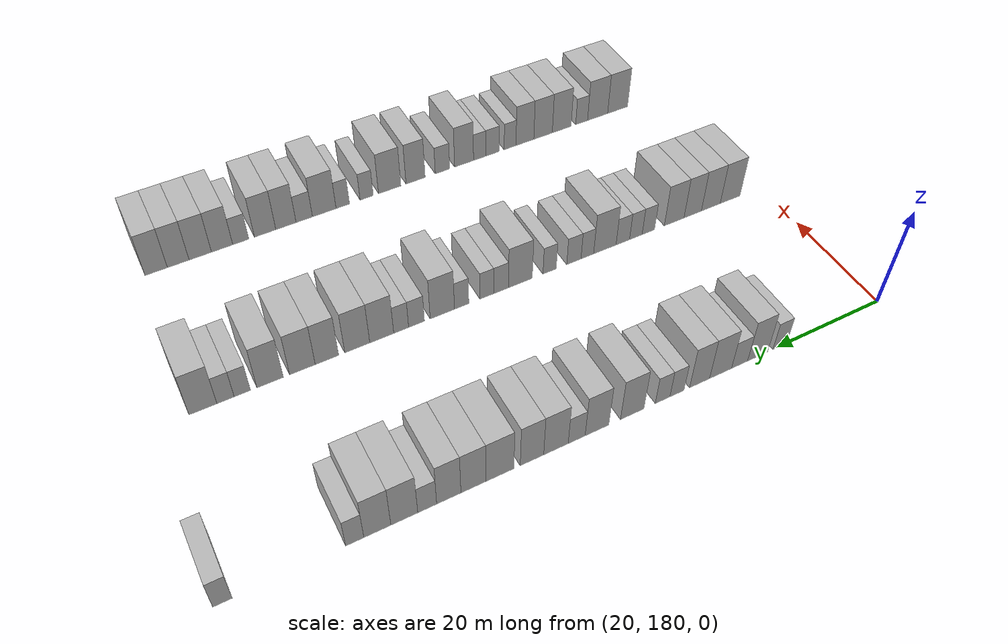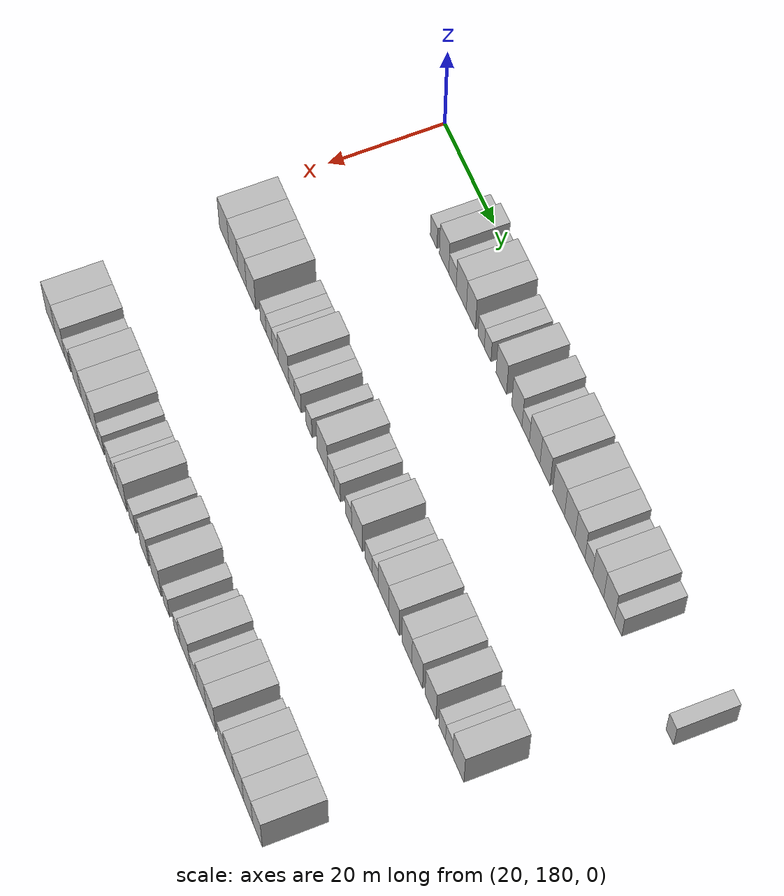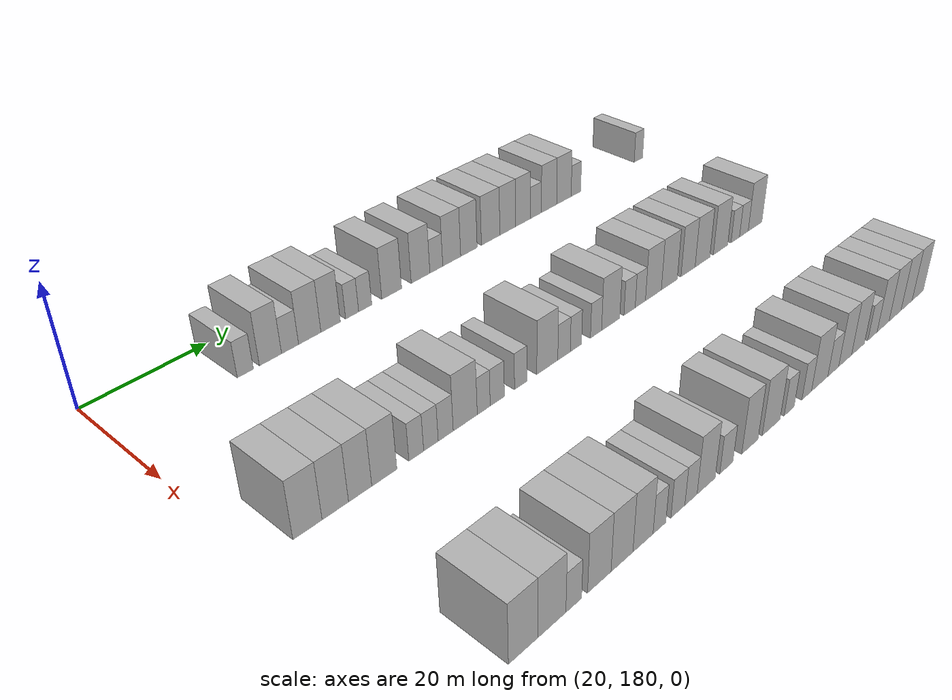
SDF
<sdf version="1.6">
 <world name="default">
  <model name="building_122">
   <static>1</static>
   <pose>25.0000 199.4930 0 0.000000 0.000000 0.000000</pose>
   <link name="link">
    <pose>0 0 3.00 0 0 0</pose>
    <collision name="collision"><geometry><box><size>10.0000 2.6886 6.0000</size></box></geometry></collision>
    <visual name="visual">
     <cast_shadows>0</cast_shadows>
     <geometry><box><size>10.0000 2.6886 6.0000</size></box></geometry>
     <material>
      <script>
       <uri>model://HANNAS_wall/materials/scripts</uri>
       <uri>model://HANNAS_wall/materials/textures</uri>
       <name>vrc/HANNAS_wall</name>
      </script>
     </material>
    </visual>
   </link>
  </model>
  <model name="building_123">
   <static>1</static>
   <pose>25.0000 203.7383 0 0.000000 0.000000 0.000000</pose>
   <link name="link">
    <pose>0 0 4.50 0 0 0</pose>
    <collision name="collision"><geometry><box><size>10.0000 3.8022 9.0000</size></box></geometry></collision>
    <visual name="visual">
     <cast_shadows>0</cast_shadows>
     <geometry><box><size>10.0000 3.8022 9.0000</size></box></geometry>
     <material>
      <script>
       <uri>model://HANNAS_wall/materials/scripts</uri>
       <uri>model://HANNAS_wall/materials/textures</uri>
       <name>vrc/HANNAS_wall</name>
      </script>
     </material>
    </visual>
   </link>
  </model>
  <model name="building_124">
   <static>1</static>
   <pose>25.0000 207.1387 0 0.000000 0.000000 0.000000</pose>
   <link name="link">
    <pose>0 0 3.00 0 0 0</pose>
    <collision name="collision"><geometry><box><size>10.0000 2.9986 6.0000</size></box></geometry></collision>
    <visual name="visual">
     <cast_shadows>0</cast_shadows>
     <geometry><box><size>10.0000 2.9986 6.0000</size></box></geometry>
     <material>
      <script>
       <uri>model://HANNAS_wall/materials/scripts</uri>
       <uri>model://HANNAS_wall/materials/textures</uri>
       <name>vrc/HANNAS_wall</name>
      </script>
     </material>
    </visual>
   </link>
  </model>
  <model name="building_125">
   <static>1</static>
   <pose>25.0000 210.6643 0 0.000000 0.000000 0.000000</pose>
   <link name="link">
    <pose>0 0 4.50 0 0 0</pose>
    <collision name="collision"><geometry><box><size>10.0000 4.0525 9.0000</size></box></geometry></collision>
    <visual name="visual">
     <cast_shadows>0</cast_shadows>
     <geometry><box><size>10.0000 4.0525 9.0000</size></box></geometry>
     <material>
      <script>
       <uri>model://HANNAS_wall/materials/scripts</uri>
       <uri>model://HANNAS_wall/materials/textures</uri>
       <name>vrc/HANNAS_wall</name>
      </script>
     </material>
    </visual>
   </link>
  </model>
  <model name="building_126">
   <static>1</static>
   <pose>25.0000 214.5014 0 0.000000 0.000000 0.000000</pose>
   <link name="link">
    <pose>0 0 4.50 0 0 0</pose>
    <collision name="collision"><geometry><box><size>10.0000 3.6217 9.0000</size></box></geometry></collision>
    <visual name="visual">
     <cast_shadows>0</cast_shadows>
     <geometry><box><size>10.0000 3.6217 9.0000</size></box></geometry>
     <material>
      <script>
       <uri>model://HANNAS_wall/materials/scripts</uri>
       <uri>model://HANNAS_wall/materials/textures</uri>
       <name>vrc/HANNAS_wall</name>
      </script>
     </material>
    </visual>
   </link>
  </model>
  <model name="building_127">
   <static>1</static>
   <pose>25.0000 218.5679 0 0.000000 0.000000 0.000000</pose>
   <link name="link">
    <pose>0 0 3.00 0 0 0</pose>
    <collision name="collision"><geometry><box><size>10.0000 2.5112 6.0000</size></box></geometry></collision>
    <visual name="visual">
     <cast_shadows>0</cast_shadows>
     <geometry><box><size>10.0000 2.5112 6.0000</size></box></geometry>
     <material>
      <script>
       <uri>model://HANNAS_wall/materials/scripts</uri>
       <uri>model://HANNAS_wall/materials/textures</uri>
       <name>vrc/HANNAS_wall</name>
      </script>
     </material>
    </visual>
   </link>
  </model>
  <model name="building_128">
   <static>1</static>
   <pose>25.0000 221.1135 0 0.000000 0.000000 0.000000</pose>
   <link name="link">
    <pose>0 0 3.00 0 0 0</pose>
    <collision name="collision"><geometry><box><size>10.0000 2.5801 6.0000</size></box></geometry></collision>
    <visual name="visual">
     <cast_shadows>0</cast_shadows>
     <geometry><box><size>10.0000 2.5801 6.0000</size></box></geometry>
     <material>
      <script>
       <uri>model://HANNAS_wall/materials/scripts</uri>
       <uri>model://HANNAS_wall/materials/textures</uri>
       <name>vrc/HANNAS_wall</name>
      </script>
     </material>
    </visual>
   </link>
  </model>
  <model name="building_129">
   <static>1</static>
   <pose>25.0000 226.4258 0 0.000000 0.000000 0.000000</pose>
   <link name="link">
    <pose>0 0 4.50 0 0 0</pose>
    <collision name="collision"><geometry><box><size>10.0000 4.0445 9.0000</size></box></geometry></collision>
    <visual name="visual">
     <cast_shadows>0</cast_shadows>
     <geometry><box><size>10.0000 4.0445 9.0000</size></box></geometry>
     <material>
      <script>
       <uri>model://HANNAS_wall/materials/scripts</uri>
       <uri>model://HANNAS_wall/materials/textures</uri>
       <name>vrc/HANNAS_wall</name>
      </script>
     </material>
    </visual>
   </link>
  </model>
  <model name="building_130">
   <static>1</static>
   <pose>25.0000 232.4434 0 0.000000 0.000000 0.000000</pose>
   <link name="link">
    <pose>0 0 4.50 0 0 0</pose>
    <collision name="collision"><geometry><box><size>10.0000 3.9907 9.0000</size></box></geometry></collision>
    <visual name="visual">
     <cast_shadows>0</cast_shadows>
     <geometry><box><size>10.0000 3.9907 9.0000</size></box></geometry>
     <material>
      <script>
       <uri>model://HANNAS_wall/materials/scripts</uri>
       <uri>model://HANNAS_wall/materials/textures</uri>
       <name>vrc/HANNAS_wall</name>
      </script>
     </material>
    </visual>
   </link>
  </model>
  <model name="building_131">
   <static>1</static>
   <pose>25.0000 235.8442 0 0.000000 0.000000 0.000000</pose>
   <link name="link">
    <pose>0 0 3.00 0 0 0</pose>
    <collision name="collision"><geometry><box><size>10.0000 2.8108 6.0000</size></box></geometry></collision>
    <visual name="visual">
     <cast_shadows>0</cast_shadows>
     <geometry><box><size>10.0000 2.8108 6.0000</size></box></geometry>
     <material>
      <script>
       <uri>model://HANNAS_wall/materials/scripts</uri>
       <uri>model://HANNAS_wall/materials/textures</uri>
       <name>vrc/HANNAS_wall</name>
      </script>
     </material>
    </visual>
   </link>
  </model>
  <model name="building_132">
   <static>1</static>
   <pose>25.0000 239.2590 0 0.000000 0.000000 0.000000</pose>
   <link name="link">
    <pose>0 0 4.50 0 0 0</pose>
    <collision name="collision"><geometry><box><size>10.0000 4.0189 9.0000</size></box></geometry></collision>
    <visual name="visual">
     <cast_shadows>0</cast_shadows>
     <geometry><box><size>10.0000 4.0189 9.0000</size></box></geometry>
     <material>
      <script>
       <uri>model://HANNAS_wall/materials/scripts</uri>
       <uri>model://HANNAS_wall/materials/textures</uri>
       <name>vrc/HANNAS_wall</name>
      </script>
     </material>
    </visual>
   </link>
  </model>
  <model name="building_133">
   <static>1</static>
   <pose>25.0000 243.1599 0 0.000000 0.000000 0.000000</pose>
   <link name="link">
    <pose>0 0 4.50 0 0 0</pose>
    <collision name="collision"><geometry><box><size>10.0000 3.7829 9.0000</size></box></geometry></collision>
    <visual name="visual">
     <cast_shadows>0</cast_shadows>
     <geometry><box><size>10.0000 3.7829 9.0000</size></box></geometry>
     <material>
      <script>
       <uri>model://HANNAS_wall/materials/scripts</uri>
       <uri>model://HANNAS_wall/materials/textures</uri>
       <name>vrc/HANNAS_wall</name>
      </script>
     </material>
    </visual>
   </link>
  </model>
  <model name="building_134">
   <static>1</static>
   <pose>25.0000 248.2540 0 0.000000 0.000000 0.000000</pose>
   <link name="link">
    <pose>0 0 4.50 0 0 0</pose>
    <collision name="collision"><geometry><box><size>10.0000 4.4053 9.0000</size></box></geometry></collision>
    <visual name="visual">
     <cast_shadows>0</cast_shadows>
     <geometry><box><size>10.0000 4.4053 9.0000</size></box></geometry>
     <material>
      <script>
       <uri>model://HANNAS_wall/materials/scripts</uri>
       <uri>model://HANNAS_wall/materials/textures</uri>
       <name>vrc/HANNAS_wall</name>
      </script>
     </material>
    </visual>
   </link>
  </model>
  <model name="building_135">
   <static>1</static>
   <pose>25.0000 252.3941 0 0.000000 0.000000 0.000000</pose>
   <link name="link">
    <pose>0 0 4.50 0 0 0</pose>
    <collision name="collision"><geometry><box><size>10.0000 3.8749 9.0000</size></box></geometry></collision>
    <visual name="visual">
     <cast_shadows>0</cast_shadows>
     <geometry><box><size>10.0000 3.8749 9.0000</size></box></geometry>
     <material>
      <script>
       <uri>model://HANNAS_wall/materials/scripts</uri>
       <uri>model://HANNAS_wall/materials/textures</uri>
       <name>vrc/HANNAS_wall</name>
      </script>
     </material>
    </visual>
   </link>
  </model>
  <model name="building_136">
   <static>1</static>
   <pose>25.0000 256.1799 0 0.000000 0.000000 0.000000</pose>
   <link name="link">
    <pose>0 0 4.50 0 0 0</pose>
    <collision name="collision"><geometry><box><size>10.0000 3.6968 9.0000</size></box></geometry></collision>
    <visual name="visual">
     <cast_shadows>0</cast_shadows>
     <geometry><box><size>10.0000 3.6968 9.0000</size></box></geometry>
     <material>
      <script>
       <uri>model://HANNAS_wall/materials/scripts</uri>
       <uri>model://HANNAS_wall/materials/textures</uri>
       <name>vrc/HANNAS_wall</name>
      </script>
     </material>
    </visual>
   </link>
  </model>
  <model name="building_137">
   <static>1</static>
   <pose>25.0000 259.4448 0 0.000000 0.000000 0.000000</pose>
   <link name="link">
    <pose>0 0 3.00 0 0 0</pose>
    <collision name="collision"><geometry><box><size>10.0000 2.8330 6.0000</size></box></geometry></collision>
    <visual name="visual">
     <cast_shadows>0</cast_shadows>
     <geometry><box><size>10.0000 2.8330 6.0000</size></box></geometry>
     <material>
      <script>
       <uri>model://HANNAS_wall/materials/scripts</uri>
       <uri>model://HANNAS_wall/materials/textures</uri>
       <name>vrc/HANNAS_wall</name>
      </script>
     </material>
    </visual>
   </link>
  </model>
  <model name="building_138">
   <static>1</static>
   <pose>25.0000 262.8525 0 0.000000 0.000000 0.000000</pose>
   <link name="link">
    <pose>0 0 4.50 0 0 0</pose>
    <collision name="collision"><geometry><box><size>10.0000 3.9826 9.0000</size></box></geometry></collision>
    <visual name="visual">
     <cast_shadows>0</cast_shadows>
     <geometry><box><size>10.0000 3.9826 9.0000</size></box></geometry>
     <material>
      <script>
       <uri>model://HANNAS_wall/materials/scripts</uri>
       <uri>model://HANNAS_wall/materials/textures</uri>
       <name>vrc/HANNAS_wall</name>
      </script>
     </material>
    </visual>
   </link>
  </model>
  <model name="building_139">
   <static>1</static>
   <pose>25.0000 266.8054 0 0.000000 0.000000 0.000000</pose>
   <link name="link">
    <pose>0 0 4.50 0 0 0</pose>
    <collision name="collision"><geometry><box><size>10.0000 3.9231 9.0000</size></box></geometry></collision>
    <visual name="visual">
     <cast_shadows>0</cast_shadows>
     <geometry><box><size>10.0000 3.9231 9.0000</size></box></geometry>
     <material>
      <script>
       <uri>model://HANNAS_wall/materials/scripts</uri>
       <uri>model://HANNAS_wall/materials/textures</uri>
       <name>vrc/HANNAS_wall</name>
      </script>
     </material>
    </visual>
   </link>
  </model>
  <model name="building_140">
   <static>1</static>
   <pose>25.0000 270.0753 0 0.000000 0.000000 0.000000</pose>
   <link name="link">
    <pose>0 0 3.00 0 0 0</pose>
    <collision name="collision"><geometry><box><size>10.0000 2.6166 6.0000</size></box></geometry></collision>
    <visual name="visual">
     <cast_shadows>0</cast_shadows>
     <geometry><box><size>10.0000 2.6166 6.0000</size></box></geometry>
     <material>
      <script>
       <uri>model://HANNAS_wall/materials/scripts</uri>
       <uri>model://HANNAS_wall/materials/textures</uri>
       <name>vrc/HANNAS_wall</name>
      </script>
     </material>
    </visual>
   </link>
  </model>
  <model name="building_141">
   <static>1</static>
   <pose>25.0000 288.2446 0 0.000000 0.000000 0.000000</pose>
   <link name="link">
    <pose>0 0 3.00 0 0 0</pose>
    <collision name="collision"><geometry><box><size>10.0000 2.5740 6.0000</size></box></geometry></collision>
    <visual name="visual">
     <cast_shadows>0</cast_shadows>
     <geometry><box><size>10.0000 2.5740 6.0000</size></box></geometry>
     <material>
      <script>
       <uri>model://HANNAS_wall/materials/scripts</uri>
       <uri>model://HANNAS_wall/materials/textures</uri>
       <name>vrc/HANNAS_wall</name>
      </script>
     </material>
    </visual>
   </link>
  </model>
  <model name="building_260">
   <static>1</static>
   <pose>55.0000 186.7258 0 0.000000 0.000000 0.000000</pose>
   <link name="link">
    <pose>0 0 4.50 0 0 0</pose>
    <collision name="collision"><geometry><box><size>10.0000 4.2347 9.0000</size></box></geometry></collision>
    <visual name="visual">
     <cast_shadows>0</cast_shadows>
     <geometry><box><size>10.0000 4.2347 9.0000</size></box></geometry>
     <material>
      <script>
       <uri>model://HANNAS_wall/materials/scripts</uri>
       <uri>model://HANNAS_wall/materials/textures</uri>
       <name>vrc/HANNAS_wall</name>
      </script>
     </material>
    </visual>
   </link>
  </model>
  <model name="building_261">
   <static>1</static>
   <pose>55.0000 190.8363 0 0.000000 0.000000 0.000000</pose>
   <link name="link">
    <pose>0 0 4.50 0 0 0</pose>
    <collision name="collision"><geometry><box><size>10.0000 3.9864 9.0000</size></box></geometry></collision>
    <visual name="visual">
     <cast_shadows>0</cast_shadows>
     <geometry><box><size>10.0000 3.9864 9.0000</size></box></geometry>
     <material>
      <script>
       <uri>model://HANNAS_wall/materials/scripts</uri>
       <uri>model://HANNAS_wall/materials/textures</uri>
       <name>vrc/HANNAS_wall</name>
      </script>
     </material>
    </visual>
   </link>
  </model>
  <model name="building_262">
   <static>1</static>
   <pose>55.0000 194.6458 0 0.000000 0.000000 0.000000</pose>
   <link name="link">
    <pose>0 0 4.50 0 0 0</pose>
    <collision name="collision"><geometry><box><size>10.0000 3.6327 9.0000</size></box></geometry></collision>
    <visual name="visual">
     <cast_shadows>0</cast_shadows>
     <geometry><box><size>10.0000 3.6327 9.0000</size></box></geometry>
     <material>
      <script>
       <uri>model://HANNAS_wall/materials/scripts</uri>
       <uri>model://HANNAS_wall/materials/textures</uri>
       <name>vrc/HANNAS_wall</name>
      </script>
     </material>
    </visual>
   </link>
  </model>
  <model name="building_263">
   <static>1</static>
   <pose>55.0000 198.4908 0 0.000000 0.000000 0.000000</pose>
   <link name="link">
    <pose>0 0 4.50 0 0 0</pose>
    <collision name="collision"><geometry><box><size>10.0000 4.0573 9.0000</size></box></geometry></collision>
    <visual name="visual">
     <cast_shadows>0</cast_shadows>
     <geometry><box><size>10.0000 4.0573 9.0000</size></box></geometry>
     <material>
      <script>
       <uri>model://HANNAS_wall/materials/scripts</uri>
       <uri>model://HANNAS_wall/materials/textures</uri>
       <name>vrc/HANNAS_wall</name>
      </script>
     </material>
    </visual>
   </link>
  </model>
  <model name="building_264">
   <static>1</static>
   <pose>55.0000 203.7746 0 0.000000 0.000000 0.000000</pose>
   <link name="link">
    <pose>0 0 3.00 0 0 0</pose>
    <collision name="collision"><geometry><box><size>10.0000 2.5105 6.0000</size></box></geometry></collision>
    <visual name="visual">
     <cast_shadows>0</cast_shadows>
     <geometry><box><size>10.0000 2.5105 6.0000</size></box></geometry>
     <material>
      <script>
       <uri>model://HANNAS_wall/materials/scripts</uri>
       <uri>model://HANNAS_wall/materials/textures</uri>
       <name>vrc/HANNAS_wall</name>
      </script>
     </material>
    </visual>
   </link>
  </model>
  <model name="building_265">
   <static>1</static>
   <pose>55.0000 206.2933 0 0.000000 0.000000 0.000000</pose>
   <link name="link">
    <pose>0 0 3.00 0 0 0</pose>
    <collision name="collision"><geometry><box><size>10.0000 2.5268 6.0000</size></box></geometry></collision>
    <visual name="visual">
     <cast_shadows>0</cast_shadows>
     <geometry><box><size>10.0000 2.5268 6.0000</size></box></geometry>
     <material>
      <script>
       <uri>model://HANNAS_wall/materials/scripts</uri>
       <uri>model://HANNAS_wall/materials/textures</uri>
       <name>vrc/HANNAS_wall</name>
      </script>
     </material>
    </visual>
   </link>
  </model>
  <model name="building_266">
   <static>1</static>
   <pose>55.0000 208.8917 0 0.000000 0.000000 0.000000</pose>
   <link name="link">
    <pose>0 0 3.00 0 0 0</pose>
    <collision name="collision"><geometry><box><size>10.0000 2.6702 6.0000</size></box></geometry></collision>
    <visual name="visual">
     <cast_shadows>0</cast_shadows>
     <geometry><box><size>10.0000 2.6702 6.0000</size></box></geometry>
     <material>
      <script>
       <uri>model://HANNAS_wall/materials/scripts</uri>
       <uri>model://HANNAS_wall/materials/textures</uri>
       <name>vrc/HANNAS_wall</name>
      </script>
     </material>
    </visual>
   </link>
  </model>
  <model name="building_267">
   <static>1</static>
   <pose>55.0000 212.4298 0 0.000000 0.000000 0.000000</pose>
   <link name="link">
    <pose>0 0 4.50 0 0 0</pose>
    <collision name="collision"><geometry><box><size>10.0000 4.4060 9.0000</size></box></geometry></collision>
    <visual name="visual">
     <cast_shadows>0</cast_shadows>
     <geometry><box><size>10.0000 4.4060 9.0000</size></box></geometry>
     <material>
      <script>
       <uri>model://HANNAS_wall/materials/scripts</uri>
       <uri>model://HANNAS_wall/materials/textures</uri>
       <name>vrc/HANNAS_wall</name>
      </script>
     </material>
    </visual>
   </link>
  </model>
  <model name="building_268">
   <static>1</static>
   <pose>55.0000 215.8548 0 0.000000 0.000000 0.000000</pose>
   <link name="link">
    <pose>0 0 3.00 0 0 0</pose>
    <collision name="collision"><geometry><box><size>10.0000 2.4440 6.0000</size></box></geometry></collision>
    <visual name="visual">
     <cast_shadows>0</cast_shadows>
     <geometry><box><size>10.0000 2.4440 6.0000</size></box></geometry>
     <material>
      <script>
       <uri>model://HANNAS_wall/materials/scripts</uri>
       <uri>model://HANNAS_wall/materials/textures</uri>
       <name>vrc/HANNAS_wall</name>
      </script>
     </material>
    </visual>
   </link>
  </model>
  <model name="building_269">
   <static>1</static>
   <pose>55.0000 218.4451 0 0.000000 0.000000 0.000000</pose>
   <link name="link">
    <pose>0 0 3.00 0 0 0</pose>
    <collision name="collision"><geometry><box><size>10.0000 2.7367 6.0000</size></box></geometry></collision>
    <visual name="visual">
     <cast_shadows>0</cast_shadows>
     <geometry><box><size>10.0000 2.7367 6.0000</size></box></geometry>
     <material>
      <script>
       <uri>model://HANNAS_wall/materials/scripts</uri>
       <uri>model://HANNAS_wall/materials/textures</uri>
       <name>vrc/HANNAS_wall</name>
      </script>
     </material>
    </visual>
   </link>
  </model>
  <model name="building_270">
   <static>1</static>
   <pose>55.0000 223.0677 0 0.000000 0.000000 0.000000</pose>
   <link name="link">
    <pose>0 0 3.00 0 0 0</pose>
    <collision name="collision"><geometry><box><size>10.0000 2.5084 6.0000</size></box></geometry></collision>
    <visual name="visual">
     <cast_shadows>0</cast_shadows>
     <geometry><box><size>10.0000 2.5084 6.0000</size></box></geometry>
     <material>
      <script>
       <uri>model://HANNAS_wall/materials/scripts</uri>
       <uri>model://HANNAS_wall/materials/textures</uri>
       <name>vrc/HANNAS_wall</name>
      </script>
     </material>
    </visual>
   </link>
  </model>
  <model name="building_271">
   <static>1</static>
   <pose>55.0000 228.5223 0 0.000000 0.000000 0.000000</pose>
   <link name="link">
    <pose>0 0 4.50 0 0 0</pose>
    <collision name="collision"><geometry><box><size>10.0000 4.4009 9.0000</size></box></geometry></collision>
    <visual name="visual">
     <cast_shadows>0</cast_shadows>
     <geometry><box><size>10.0000 4.4009 9.0000</size></box></geometry>
     <material>
      <script>
       <uri>model://HANNAS_wall/materials/scripts</uri>
       <uri>model://HANNAS_wall/materials/textures</uri>
       <name>vrc/HANNAS_wall</name>
      </script>
     </material>
    </visual>
   </link>
  </model>
  <model name="building_272">
   <static>1</static>
   <pose>55.0000 232.0679 0 0.000000 0.000000 0.000000</pose>
   <link name="link">
    <pose>0 0 3.00 0 0 0</pose>
    <collision name="collision"><geometry><box><size>10.0000 2.6902 6.0000</size></box></geometry></collision>
    <visual name="visual">
     <cast_shadows>0</cast_shadows>
     <geometry><box><size>10.0000 2.6902 6.0000</size></box></geometry>
     <material>
      <script>
       <uri>model://HANNAS_wall/materials/scripts</uri>
       <uri>model://HANNAS_wall/materials/textures</uri>
       <name>vrc/HANNAS_wall</name>
      </script>
     </material>
    </visual>
   </link>
  </model>
  <model name="building_273">
   <static>1</static>
   <pose>55.0000 234.6548 0 0.000000 0.000000 0.000000</pose>
   <link name="link">
    <pose>0 0 3.00 0 0 0</pose>
    <collision name="collision"><geometry><box><size>10.0000 2.4836 6.0000</size></box></geometry></collision>
    <visual name="visual">
     <cast_shadows>0</cast_shadows>
     <geometry><box><size>10.0000 2.4836 6.0000</size></box></geometry>
     <material>
      <script>
       <uri>model://HANNAS_wall/materials/scripts</uri>
       <uri>model://HANNAS_wall/materials/textures</uri>
       <name>vrc/HANNAS_wall</name>
      </script>
     </material>
    </visual>
   </link>
  </model>
  <model name="building_274">
   <static>1</static>
   <pose>55.0000 239.1678 0 0.000000 0.000000 0.000000</pose>
   <link name="link">
    <pose>0 0 3.00 0 0 0</pose>
    <collision name="collision"><geometry><box><size>10.0000 2.5424 6.0000</size></box></geometry></collision>
    <visual name="visual">
     <cast_shadows>0</cast_shadows>
     <geometry><box><size>10.0000 2.5424 6.0000</size></box></geometry>
     <material>
      <script>
       <uri>model://HANNAS_wall/materials/scripts</uri>
       <uri>model://HANNAS_wall/materials/textures</uri>
       <name>vrc/HANNAS_wall</name>
      </script>
     </material>
    </visual>
   </link>
  </model>
  <model name="building_275">
   <static>1</static>
   <pose>55.0000 242.5725 0 0.000000 0.000000 0.000000</pose>
   <link name="link">
    <pose>0 0 4.50 0 0 0</pose>
    <collision name="collision"><geometry><box><size>10.0000 4.2669 9.0000</size></box></geometry></collision>
    <visual name="visual">
     <cast_shadows>0</cast_shadows>
     <geometry><box><size>10.0000 4.2669 9.0000</size></box></geometry>
     <material>
      <script>
       <uri>model://HANNAS_wall/materials/scripts</uri>
       <uri>model://HANNAS_wall/materials/textures</uri>
       <name>vrc/HANNAS_wall</name>
      </script>
     </material>
    </visual>
   </link>
  </model>
  <model name="building_276">
   <static>1</static>
   <pose>55.0000 247.0689 0 0.000000 0.000000 0.000000</pose>
   <link name="link">
    <pose>0 0 3.00 0 0 0</pose>
    <collision name="collision"><geometry><box><size>10.0000 2.7260 6.0000</size></box></geometry></collision>
    <visual name="visual">
     <cast_shadows>0</cast_shadows>
     <geometry><box><size>10.0000 2.7260 6.0000</size></box></geometry>
     <material>
      <script>
       <uri>model://HANNAS_wall/materials/scripts</uri>
       <uri>model://HANNAS_wall/materials/textures</uri>
       <name>vrc/HANNAS_wall</name>
      </script>
     </material>
    </visual>
   </link>
  </model>
  <model name="building_277">
   <static>1</static>
   <pose>55.0000 249.7017 0 0.000000 0.000000 0.000000</pose>
   <link name="link">
    <pose>0 0 3.00 0 0 0</pose>
    <collision name="collision"><geometry><box><size>10.0000 2.5396 6.0000</size></box></geometry></collision>
    <visual name="visual">
     <cast_shadows>0</cast_shadows>
     <geometry><box><size>10.0000 2.5396 6.0000</size></box></geometry>
     <material>
      <script>
       <uri>model://HANNAS_wall/materials/scripts</uri>
       <uri>model://HANNAS_wall/materials/textures</uri>
       <name>vrc/HANNAS_wall</name>
      </script>
     </material>
    </visual>
   </link>
  </model>
  <model name="building_278">
   <static>1</static>
   <pose>55.0000 252.9926 0 0.000000 0.000000 0.000000</pose>
   <link name="link">
    <pose>0 0 4.50 0 0 0</pose>
    <collision name="collision"><geometry><box><size>10.0000 4.0422 9.0000</size></box></geometry></collision>
    <visual name="visual">
     <cast_shadows>0</cast_shadows>
     <geometry><box><size>10.0000 4.0422 9.0000</size></box></geometry>
     <material>
      <script>
       <uri>model://HANNAS_wall/materials/scripts</uri>
       <uri>model://HANNAS_wall/materials/textures</uri>
       <name>vrc/HANNAS_wall</name>
      </script>
     </material>
    </visual>
   </link>
  </model>
  <model name="building_279">
   <static>1</static>
   <pose>55.0000 257.0920 0 0.000000 0.000000 0.000000</pose>
   <link name="link">
    <pose>0 0 4.50 0 0 0</pose>
    <collision name="collision"><geometry><box><size>10.0000 4.1567 9.0000</size></box></geometry></collision>
    <visual name="visual">
     <cast_shadows>0</cast_shadows>
     <geometry><box><size>10.0000 4.1567 9.0000</size></box></geometry>
     <material>
      <script>
       <uri>model://HANNAS_wall/materials/scripts</uri>
       <uri>model://HANNAS_wall/materials/textures</uri>
       <name>vrc/HANNAS_wall</name>
      </script>
     </material>
    </visual>
   </link>
  </model>
  <model name="building_280">
   <static>1</static>
   <pose>55.0000 262.0756 0 0.000000 0.000000 0.000000</pose>
   <link name="link">
    <pose>0 0 4.50 0 0 0</pose>
    <collision name="collision"><geometry><box><size>10.0000 3.8106 9.0000</size></box></geometry></collision>
    <visual name="visual">
     <cast_shadows>0</cast_shadows>
     <geometry><box><size>10.0000 3.8106 9.0000</size></box></geometry>
     <material>
      <script>
       <uri>model://HANNAS_wall/materials/scripts</uri>
       <uri>model://HANNAS_wall/materials/textures</uri>
       <name>vrc/HANNAS_wall</name>
      </script>
     </material>
    </visual>
   </link>
  </model>
  <model name="building_281">
   <static>1</static>
   <pose>55.0000 266.0356 0 0.000000 0.000000 0.000000</pose>
   <link name="link">
    <pose>0 0 4.50 0 0 0</pose>
    <collision name="collision"><geometry><box><size>10.0000 4.1093 9.0000</size></box></geometry></collision>
    <visual name="visual">
     <cast_shadows>0</cast_shadows>
     <geometry><box><size>10.0000 4.1093 9.0000</size></box></geometry>
     <material>
      <script>
       <uri>model://HANNAS_wall/materials/scripts</uri>
       <uri>model://HANNAS_wall/materials/textures</uri>
       <name>vrc/HANNAS_wall</name>
      </script>
     </material>
    </visual>
   </link>
  </model>
  <model name="building_282">
   <static>1</static>
   <pose>55.0000 271.1617 0 0.000000 0.000000 0.000000</pose>
   <link name="link">
    <pose>0 0 4.50 0 0 0</pose>
    <collision name="collision"><geometry><box><size>10.0000 4.1430 9.0000</size></box></geometry></collision>
    <visual name="visual">
     <cast_shadows>0</cast_shadows>
     <geometry><box><size>10.0000 4.1430 9.0000</size></box></geometry>
     <material>
      <script>
       <uri>model://HANNAS_wall/materials/scripts</uri>
       <uri>model://HANNAS_wall/materials/textures</uri>
       <name>vrc/HANNAS_wall</name>
      </script>
     </material>
    </visual>
   </link>
  </model>
  <model name="building_283">
   <static>1</static>
   <pose>55.0000 275.4896 0 0.000000 0.000000 0.000000</pose>
   <link name="link">
    <pose>0 0 3.00 0 0 0</pose>
    <collision name="collision"><geometry><box><size>10.0000 2.5129 6.0000</size></box></geometry></collision>
    <visual name="visual">
     <cast_shadows>0</cast_shadows>
     <geometry><box><size>10.0000 2.5129 6.0000</size></box></geometry>
     <material>
      <script>
       <uri>model://HANNAS_wall/materials/scripts</uri>
       <uri>model://HANNAS_wall/materials/textures</uri>
       <name>vrc/HANNAS_wall</name>
      </script>
     </material>
    </visual>
   </link>
  </model>
  <model name="building_284">
   <static>1</static>
   <pose>55.0000 278.0555 0 0.000000 0.000000 0.000000</pose>
   <link name="link">
    <pose>0 0 3.00 0 0 0</pose>
    <collision name="collision"><geometry><box><size>10.0000 2.6189 6.0000</size></box></geometry></collision>
    <visual name="visual">
     <cast_shadows>0</cast_shadows>
     <geometry><box><size>10.0000 2.6189 6.0000</size></box></geometry>
     <material>
      <script>
       <uri>model://HANNAS_wall/materials/scripts</uri>
       <uri>model://HANNAS_wall/materials/textures</uri>
       <name>vrc/HANNAS_wall</name>
      </script>
     </material>
    </visual>
   </link>
  </model>
  <model name="building_285">
   <static>1</static>
   <pose>55.0000 281.4813 0 0.000000 0.000000 0.000000</pose>
   <link name="link">
    <pose>0 0 4.50 0 0 0</pose>
    <collision name="collision"><geometry><box><size>10.0000 4.2327 9.0000</size></box></geometry></collision>
    <visual name="visual">
     <cast_shadows>0</cast_shadows>
     <geometry><box><size>10.0000 4.2327 9.0000</size></box></geometry>
     <material>
      <script>
       <uri>model://HANNAS_wall/materials/scripts</uri>
       <uri>model://HANNAS_wall/materials/textures</uri>
       <name>vrc/HANNAS_wall</name>
      </script>
     </material>
    </visual>
   </link>
  </model>
  <model name="building_399">
   <static>1</static>
   <pose>85.0000 190.9045 0 0.000000 0.000000 0.000000</pose>
   <link name="link">
    <pose>0 0 4.50 0 0 0</pose>
    <collision name="collision"><geometry><box><size>10.0000 4.4690 9.0000</size></box></geometry></collision>
    <visual name="visual">
     <cast_shadows>0</cast_shadows>
     <geometry><box><size>10.0000 4.4690 9.0000</size></box></geometry>
     <material>
      <script>
       <uri>model://HANNAS_wall/materials/scripts</uri>
       <uri>model://HANNAS_wall/materials/textures</uri>
       <name>vrc/HANNAS_wall</name>
      </script>
     </material>
    </visual>
   </link>
  </model>
  <model name="building_400">
   <static>1</static>
   <pose>85.0000 195.3651 0 0.000000 0.000000 0.000000</pose>
   <link name="link">
    <pose>0 0 4.50 0 0 0</pose>
    <collision name="collision"><geometry><box><size>10.0000 4.4522 9.0000</size></box></geometry></collision>
    <visual name="visual">
     <cast_shadows>0</cast_shadows>
     <geometry><box><size>10.0000 4.4522 9.0000</size></box></geometry>
     <material>
      <script>
       <uri>model://HANNAS_wall/materials/scripts</uri>
       <uri>model://HANNAS_wall/materials/textures</uri>
       <name>vrc/HANNAS_wall</name>
      </script>
     </material>
    </visual>
   </link>
  </model>
  <model name="building_401">
   <static>1</static>
   <pose>85.0000 198.8908 0 0.000000 0.000000 0.000000</pose>
   <link name="link">
    <pose>0 0 3.00 0 0 0</pose>
    <collision name="collision"><geometry><box><size>10.0000 2.5990 6.0000</size></box></geometry></collision>
    <visual name="visual">
     <cast_shadows>0</cast_shadows>
     <geometry><box><size>10.0000 2.5990 6.0000</size></box></geometry>
     <material>
      <script>
       <uri>model://HANNAS_wall/materials/scripts</uri>
       <uri>model://HANNAS_wall/materials/textures</uri>
       <name>vrc/HANNAS_wall</name>
      </script>
     </material>
    </visual>
   </link>
  </model>
  <model name="building_402">
   <static>1</static>
   <pose>85.0000 203.2203 0 0.000000 0.000000 0.000000</pose>
   <link name="link">
    <pose>0 0 4.50 0 0 0</pose>
    <collision name="collision"><geometry><box><size>10.0000 4.0601 9.0000</size></box></geometry></collision>
    <visual name="visual">
     <cast_shadows>0</cast_shadows>
     <geometry><box><size>10.0000 4.0601 9.0000</size></box></geometry>
     <material>
      <script>
       <uri>model://HANNAS_wall/materials/scripts</uri>
       <uri>model://HANNAS_wall/materials/textures</uri>
       <name>vrc/HANNAS_wall</name>
      </script>
     </material>
    </visual>
   </link>
  </model>
  <model name="building_403">
   <static>1</static>
   <pose>85.0000 207.2222 0 0.000000 0.000000 0.000000</pose>
   <link name="link">
    <pose>0 0 4.50 0 0 0</pose>
    <collision name="collision"><geometry><box><size>10.0000 3.9436 9.0000</size></box></geometry></collision>
    <visual name="visual">
     <cast_shadows>0</cast_shadows>
     <geometry><box><size>10.0000 3.9436 9.0000</size></box></geometry>
     <material>
      <script>
       <uri>model://HANNAS_wall/materials/scripts</uri>
       <uri>model://HANNAS_wall/materials/textures</uri>
       <name>vrc/HANNAS_wall</name>
      </script>
     </material>
    </visual>
   </link>
  </model>
  <model name="building_404">
   <static>1</static>
   <pose>85.0000 211.0721 0 0.000000 0.000000 0.000000</pose>
   <link name="link">
    <pose>0 0 4.50 0 0 0</pose>
    <collision name="collision"><geometry><box><size>10.0000 3.7563 9.0000</size></box></geometry></collision>
    <visual name="visual">
     <cast_shadows>0</cast_shadows>
     <geometry><box><size>10.0000 3.7563 9.0000</size></box></geometry>
     <material>
      <script>
       <uri>model://HANNAS_wall/materials/scripts</uri>
       <uri>model://HANNAS_wall/materials/textures</uri>
       <name>vrc/HANNAS_wall</name>
      </script>
     </material>
    </visual>
   </link>
  </model>
  <model name="building_405">
   <static>1</static>
   <pose>85.0000 214.1835 0 0.000000 0.000000 0.000000</pose>
   <link name="link">
    <pose>0 0 3.00 0 0 0</pose>
    <collision name="collision"><geometry><box><size>10.0000 2.4666 6.0000</size></box></geometry></collision>
    <visual name="visual">
     <cast_shadows>0</cast_shadows>
     <geometry><box><size>10.0000 2.4666 6.0000</size></box></geometry>
     <material>
      <script>
       <uri>model://HANNAS_wall/materials/scripts</uri>
       <uri>model://HANNAS_wall/materials/textures</uri>
       <name>vrc/HANNAS_wall</name>
      </script>
     </material>
    </visual>
   </link>
  </model>
  <model name="building_406">
   <static>1</static>
   <pose>85.0000 217.8159 0 0.000000 0.000000 0.000000</pose>
   <link name="link">
    <pose>0 0 3.00 0 0 0</pose>
    <collision name="collision"><geometry><box><size>10.0000 2.7981 6.0000</size></box></geometry></collision>
    <visual name="visual">
     <cast_shadows>0</cast_shadows>
     <geometry><box><size>10.0000 2.7981 6.0000</size></box></geometry>
     <material>
      <script>
       <uri>model://HANNAS_wall/materials/scripts</uri>
       <uri>model://HANNAS_wall/materials/textures</uri>
       <name>vrc/HANNAS_wall</name>
      </script>
     </material>
    </visual>
   </link>
  </model>
  <model name="building_407">
   <static>1</static>
   <pose>85.0000 220.4628 0 0.000000 0.000000 0.000000</pose>
   <link name="link">
    <pose>0 0 3.00 0 0 0</pose>
    <collision name="collision"><geometry><box><size>10.0000 2.4958 6.0000</size></box></geometry></collision>
    <visual name="visual">
     <cast_shadows>0</cast_shadows>
     <geometry><box><size>10.0000 2.4958 6.0000</size></box></geometry>
     <material>
      <script>
       <uri>model://HANNAS_wall/materials/scripts</uri>
       <uri>model://HANNAS_wall/materials/textures</uri>
       <name>vrc/HANNAS_wall</name>
      </script>
     </material>
    </visual>
   </link>
  </model>
  <model name="building_408">
   <static>1</static>
   <pose>85.0000 223.6197 0 0.000000 0.000000 0.000000</pose>
   <link name="link">
    <pose>0 0 4.50 0 0 0</pose>
    <collision name="collision"><geometry><box><size>10.0000 3.8180 9.0000</size></box></geometry></collision>
    <visual name="visual">
     <cast_shadows>0</cast_shadows>
     <geometry><box><size>10.0000 3.8180 9.0000</size></box></geometry>
     <material>
      <script>
       <uri>model://HANNAS_wall/materials/scripts</uri>
       <uri>model://HANNAS_wall/materials/textures</uri>
       <name>vrc/HANNAS_wall</name>
      </script>
     </material>
    </visual>
   </link>
  </model>
  <model name="building_409">
   <static>1</static>
   <pose>85.0000 227.9652 0 0.000000 0.000000 0.000000</pose>
   <link name="link">
    <pose>0 0 3.00 0 0 0</pose>
    <collision name="collision"><geometry><box><size>10.0000 2.8732 6.0000</size></box></geometry></collision>
    <visual name="visual">
     <cast_shadows>0</cast_shadows>
     <geometry><box><size>10.0000 2.8732 6.0000</size></box></geometry>
     <material>
      <script>
       <uri>model://HANNAS_wall/materials/scripts</uri>
       <uri>model://HANNAS_wall/materials/textures</uri>
       <name>vrc/HANNAS_wall</name>
      </script>
     </material>
    </visual>
   </link>
  </model>
  <model name="building_410">
   <static>1</static>
   <pose>85.0000 233.2715 0 0.000000 0.000000 0.000000</pose>
   <link name="link">
    <pose>0 0 4.50 0 0 0</pose>
    <collision name="collision"><geometry><box><size>10.0000 3.7394 9.0000</size></box></geometry></collision>
    <visual name="visual">
     <cast_shadows>0</cast_shadows>
     <geometry><box><size>10.0000 3.7394 9.0000</size></box></geometry>
     <material>
      <script>
       <uri>model://HANNAS_wall/materials/scripts</uri>
       <uri>model://HANNAS_wall/materials/textures</uri>
       <name>vrc/HANNAS_wall</name>
      </script>
     </material>
    </visual>
   </link>
  </model>
  <model name="building_411">
   <static>1</static>
   <pose>85.0000 238.2914 0 0.000000 0.000000 0.000000</pose>
   <link name="link">
    <pose>0 0 4.50 0 0 0</pose>
    <collision name="collision"><geometry><box><size>10.0000 4.3005 9.0000</size></box></geometry></collision>
    <visual name="visual">
     <cast_shadows>0</cast_shadows>
     <geometry><box><size>10.0000 4.3005 9.0000</size></box></geometry>
     <material>
      <script>
       <uri>model://HANNAS_wall/materials/scripts</uri>
       <uri>model://HANNAS_wall/materials/textures</uri>
       <name>vrc/HANNAS_wall</name>
      </script>
     </material>
    </visual>
   </link>
  </model>
  <model name="building_412">
   <static>1</static>
   <pose>85.0000 242.6914 0 0.000000 0.000000 0.000000</pose>
   <link name="link">
    <pose>0 0 3.00 0 0 0</pose>
    <collision name="collision"><geometry><box><size>10.0000 2.4994 6.0000</size></box></geometry></collision>
    <visual name="visual">
     <cast_shadows>0</cast_shadows>
     <geometry><box><size>10.0000 2.4994 6.0000</size></box></geometry>
     <material>
      <script>
       <uri>model://HANNAS_wall/materials/scripts</uri>
       <uri>model://HANNAS_wall/materials/textures</uri>
       <name>vrc/HANNAS_wall</name>
      </script>
     </material>
    </visual>
   </link>
  </model>
  <model name="building_413">
   <static>1</static>
   <pose>85.0000 247.1910 0 0.000000 0.000000 0.000000</pose>
   <link name="link">
    <pose>0 0 3.00 0 0 0</pose>
    <collision name="collision"><geometry><box><size>10.0000 2.5000 6.0000</size></box></geometry></collision>
    <visual name="visual">
     <cast_shadows>0</cast_shadows>
     <geometry><box><size>10.0000 2.5000 6.0000</size></box></geometry>
     <material>
      <script>
       <uri>model://HANNAS_wall/materials/scripts</uri>
       <uri>model://HANNAS_wall/materials/textures</uri>
       <name>vrc/HANNAS_wall</name>
      </script>
     </material>
    </visual>
   </link>
  </model>
  <model name="building_414">
   <static>1</static>
   <pose>85.0000 250.6206 0 0.000000 0.000000 0.000000</pose>
   <link name="link">
    <pose>0 0 4.50 0 0 0</pose>
    <collision name="collision"><geometry><box><size>10.0000 4.3591 9.0000</size></box></geometry></collision>
    <visual name="visual">
     <cast_shadows>0</cast_shadows>
     <geometry><box><size>10.0000 4.3591 9.0000</size></box></geometry>
     <material>
      <script>
       <uri>model://HANNAS_wall/materials/scripts</uri>
       <uri>model://HANNAS_wall/materials/textures</uri>
       <name>vrc/HANNAS_wall</name>
      </script>
     </material>
    </visual>
   </link>
  </model>
  <model name="building_415">
   <static>1</static>
   <pose>85.0000 254.2921 0 0.000000 0.000000 0.000000</pose>
   <link name="link">
    <pose>0 0 3.00 0 0 0</pose>
    <collision name="collision"><geometry><box><size>10.0000 2.9840 6.0000</size></box></geometry></collision>
    <visual name="visual">
     <cast_shadows>0</cast_shadows>
     <geometry><box><size>10.0000 2.9840 6.0000</size></box></geometry>
     <material>
      <script>
       <uri>model://HANNAS_wall/materials/scripts</uri>
       <uri>model://HANNAS_wall/materials/textures</uri>
       <name>vrc/HANNAS_wall</name>
      </script>
     </material>
    </visual>
   </link>
  </model>
  <model name="building_416">
   <static>1</static>
   <pose>85.0000 257.6113 0 0.000000 0.000000 0.000000</pose>
   <link name="link">
    <pose>0 0 4.50 0 0 0</pose>
    <collision name="collision"><geometry><box><size>10.0000 3.6543 9.0000</size></box></geometry></collision>
    <visual name="visual">
     <cast_shadows>0</cast_shadows>
     <geometry><box><size>10.0000 3.6543 9.0000</size></box></geometry>
     <material>
      <script>
       <uri>model://HANNAS_wall/materials/scripts</uri>
       <uri>model://HANNAS_wall/materials/textures</uri>
       <name>vrc/HANNAS_wall</name>
      </script>
     </material>
    </visual>
   </link>
  </model>
  <model name="building_417">
   <static>1</static>
   <pose>85.0000 261.3358 0 0.000000 0.000000 0.000000</pose>
   <link name="link">
    <pose>0 0 4.50 0 0 0</pose>
    <collision name="collision"><geometry><box><size>10.0000 3.7947 9.0000</size></box></geometry></collision>
    <visual name="visual">
     <cast_shadows>0</cast_shadows>
     <geometry><box><size>10.0000 3.7947 9.0000</size></box></geometry>
     <material>
      <script>
       <uri>model://HANNAS_wall/materials/scripts</uri>
       <uri>model://HANNAS_wall/materials/textures</uri>
       <name>vrc/HANNAS_wall</name>
      </script>
     </material>
    </visual>
   </link>
  </model>
  <model name="building_418">
   <static>1</static>
   <pose>85.0000 265.6348 0 0.000000 0.000000 0.000000</pose>
   <link name="link">
    <pose>0 0 3.00 0 0 0</pose>
    <collision name="collision"><geometry><box><size>10.0000 2.8034 6.0000</size></box></geometry></collision>
    <visual name="visual">
     <cast_shadows>0</cast_shadows>
     <geometry><box><size>10.0000 2.8034 6.0000</size></box></geometry>
     <material>
      <script>
       <uri>model://HANNAS_wall/materials/scripts</uri>
       <uri>model://HANNAS_wall/materials/textures</uri>
       <name>vrc/HANNAS_wall</name>
      </script>
     </material>
    </visual>
   </link>
  </model>
  <model name="building_419">
   <static>1</static>
   <pose>85.0000 268.8738 0 0.000000 0.000000 0.000000</pose>
   <link name="link">
    <pose>0 0 4.50 0 0 0</pose>
    <collision name="collision"><geometry><box><size>10.0000 3.6745 9.0000</size></box></geometry></collision>
    <visual name="visual">
     <cast_shadows>0</cast_shadows>
     <geometry><box><size>10.0000 3.6745 9.0000</size></box></geometry>
     <material>
      <script>
       <uri>model://HANNAS_wall/materials/scripts</uri>
       <uri>model://HANNAS_wall/materials/textures</uri>
       <name>vrc/HANNAS_wall</name>
      </script>
     </material>
    </visual>
   </link>
  </model>
  <model name="building_420">
   <static>1</static>
   <pose>85.0000 272.6245 0 0.000000 0.000000 0.000000</pose>
   <link name="link">
    <pose>0 0 4.50 0 0 0</pose>
    <collision name="collision"><geometry><box><size>10.0000 3.8269 9.0000</size></box></geometry></collision>
    <visual name="visual">
     <cast_shadows>0</cast_shadows>
     <geometry><box><size>10.0000 3.8269 9.0000</size></box></geometry>
     <material>
      <script>
       <uri>model://HANNAS_wall/materials/scripts</uri>
       <uri>model://HANNAS_wall/materials/textures</uri>
       <name>vrc/HANNAS_wall</name>
      </script>
     </material>
    </visual>
   </link>
  </model>
  <model name="building_421">
   <static>1</static>
   <pose>85.0000 276.3606 0 0.000000 0.000000 0.000000</pose>
   <link name="link">
    <pose>0 0 4.50 0 0 0</pose>
    <collision name="collision"><geometry><box><size>10.0000 3.6453 9.0000</size></box></geometry></collision>
    <visual name="visual">
     <cast_shadows>0</cast_shadows>
     <geometry><box><size>10.0000 3.6453 9.0000</size></box></geometry>
     <material>
      <script>
       <uri>model://HANNAS_wall/materials/scripts</uri>
       <uri>model://HANNAS_wall/materials/textures</uri>
       <name>vrc/HANNAS_wall</name>
      </script>
     </material>
    </visual>
   </link>
  </model>
  <model name="building_422">
   <static>1</static>
   <pose>85.0000 280.0514 0 0.000000 0.000000 0.000000</pose>
   <link name="link">
    <pose>0 0 4.50 0 0 0</pose>
    <collision name="collision"><geometry><box><size>10.0000 3.7363 9.0000</size></box></geometry></collision>
    <visual name="visual">
     <cast_shadows>0</cast_shadows>
     <geometry><box><size>10.0000 3.7363 9.0000</size></box></geometry>
     <material>
      <script>
       <uri>model://HANNAS_wall/materials/scripts</uri>
       <uri>model://HANNAS_wall/materials/textures</uri>
       <name>vrc/HANNAS_wall</name>
      </script>
     </material>
    </visual>
   </link>
  </model>
 </world>
</sdf>
